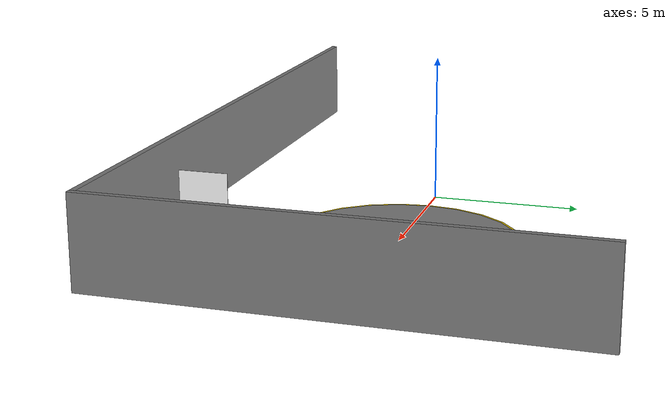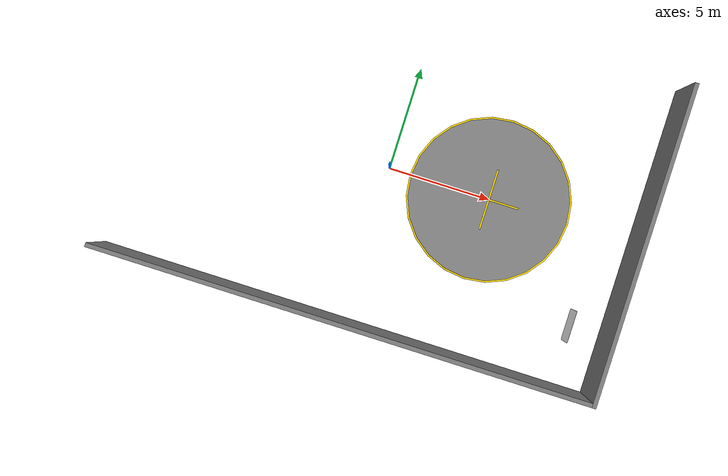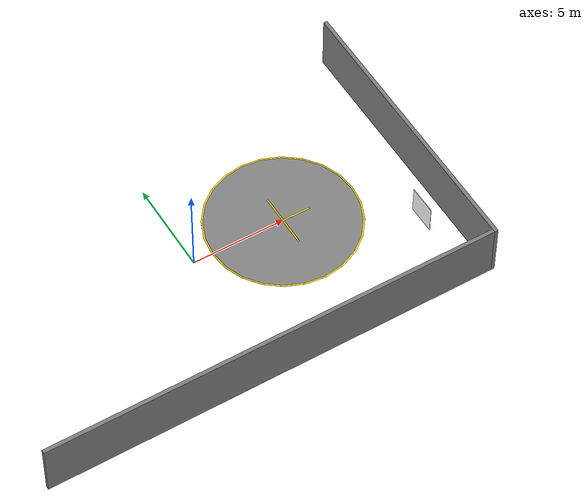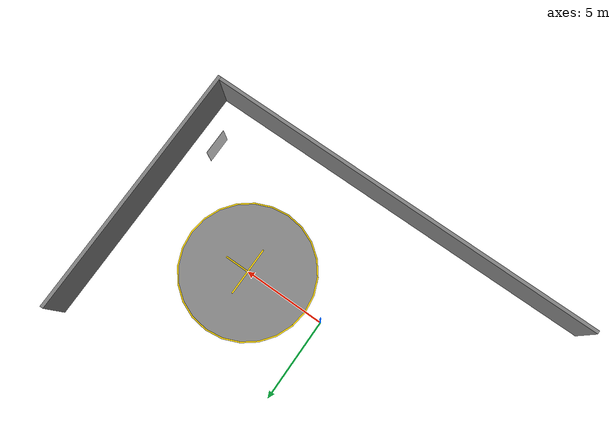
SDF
<sdf version="1.9">
 <world name="drone_garage">
  <model name="ground_plane">
   <static>true</static>
   <link name="link">
    <collision name="collision">
     <geometry><plane><normal>0 0 1</normal><size>24.0 15.0</size></plane></geometry>
    </collision>
   </link>
  </model>
  <model name="pad_2_ring">
   <static>true</static>
   <pose>5 0 0.003 0 0 0</pose>
   <link name="link">
    <visual name="v">
     <geometry><cylinder><radius>4.0</radius><length>0.002</length></cylinder></geometry>
     <material><ambient>1.0 0.85 0.0 1</ambient><diffuse>1.0 0.85 0.0 1</diffuse></material>
    </visual>
   </link>
  </model>
  <model name="pad_2_fill">
   <static>true</static>
   <pose>5 0 0.004 0 0 0</pose>
   <link name="link">
    <visual name="v">
     <geometry><cylinder><radius>3.92</radius><length>0.002</length></cylinder></geometry>
     <material><ambient>0.52 0.52 0.52 1</ambient><diffuse>0.52 0.52 0.52 1</diffuse></material>
    </visual>
   </link>
  </model>
  <model name="pad_2_cross_h">
   <static>true</static>
   <pose>5 0 0.006 0 0 0</pose>
   <link name="link">
    <visual name="v">
     <geometry><box><size>3.0 0.08 0.002</size></box></geometry>
     <material><ambient>1.0 0.85 0.0 1</ambient><diffuse>1.0 0.85 0.0 1</diffuse></material>
    </visual>
   </link>
  </model>
  <model name="pad_2_cross_v">
   <static>true</static>
   <pose>5 0 0.006 0 0 0</pose>
   <link name="link">
    <visual name="v">
     <geometry><box><size>0.08 3.0 0.002</size></box></geometry>
     <material><ambient>1.0 0.85 0.0 1</ambient><diffuse>1.0 0.85 0.0 1</diffuse></material>
    </visual>
   </link>
  </model>
  <model name="wall_north">
   <static>true</static>
   <pose>12.1 0 1.5 0 0 0</pose>
   <link name="link">
    <collision name="c"><geometry><box><size>0.2 15.4 3.0</size></box></geometry></collision>
    <visual name="v">
     <geometry><box><size>0.2 15.4 3.0</size></box></geometry>
     <material><ambient>0.50 0.50 0.50 1</ambient><diffuse>0.50 0.50 0.50 1</diffuse></material>
    </visual>
   </link>
  </model>
  <model name="wall_west">
   <static>true</static>
   <pose>0 -7.6 1.5 0 0 0</pose>
   <link name="link">
    <collision name="c"><geometry><box><size>24.0 0.2 3.0</size></box></geometry></collision>
    <visual name="v">
     <geometry><box><size>24.0 0.2 3.0</size></box></geometry>
     <material><ambient>0.50 0.50 0.50 1</ambient><diffuse>0.50 0.50 0.50 1</diffuse></material>
    </visual>
   </link>
  </model>
  <include><uri>model://pigeon_billboard</uri><name>pigeon_1</name><pose>10 -4.5 2.5 0 0 0</pose></include>
 </world>
</sdf>
